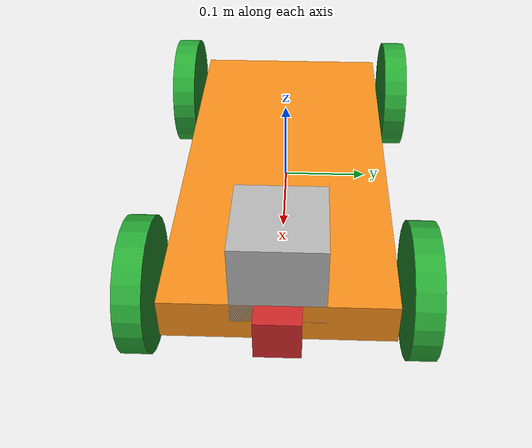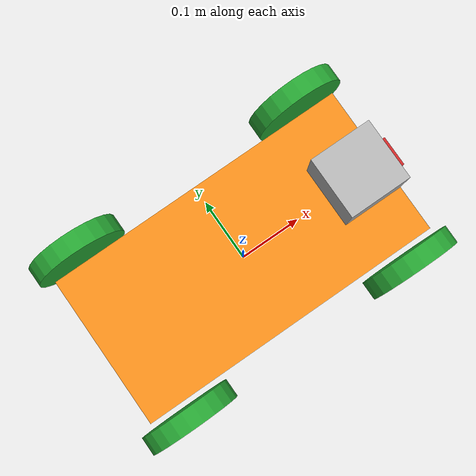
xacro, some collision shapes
<?xml version='1.0'?>

<robot name="robot1" xmlns:xacro="http://www.ros.org/wiki/xacro">
 <xacro:include filename="$(find robot1)/urdf/robot_1.gazebo"/>

  <link name="robot_footprint"></link>

  <joint name="robot_footprint_joint" type="fixed">
    <origin xyz="0 0 0" rpy="0 0 0" />
    <parent link="robot_footprint"/>
    <child link="chassis" />
  </joint>

  <link name='chassis'>
    <pose>0 0 0.1 0 0 0</pose>

    <inertial>
      <mass value="10.0"/>
      <origin xyz="0.0 0 0" rpy=" 0 0 0"/>
      <inertia
          ixx="0.1" ixy="0" ixz="0"
          iyy="0.1" iyz="0"
          izz="0.1"
      />
    </inertial>

    <collision name='collision'>
      <origin xyz="0 0 0" rpy=" 0 0 0"/>
      <geometry>
        <box size=".5 .25 .05"/>
      </geometry>
    </collision>

    <visual name='chassis_visual'>
      <origin xyz="0 0 0" rpy=" 0 0 0"/>
      <geometry>
        <box size=".5 .25 .05"/>
      </geometry>
    </visual>

  </link>

<gazebo reference="chassis">
    <material>Gazebo/Orange</material>
</gazebo>

<!--left front wheel-->
  <link name='left_front_wheel'>
     <visual name ='left_front_wheel_visual'>
	<origin xyz="0 0 0" rpy="0 1.5707 1.5707"/>
	<geometry>
	   <cylinder radius="0.075" length="0.03"/>
	</geometry>
     </visual>

     <inertial>
      	  <mass value="5.0"/>
          <origin xyz="0.0 0 0" rpy="0 1.5707 1.5707"/>
          <inertia
            ixx="0.1" ixy="0" ixz="0"
            iyy="0.1" iyz="0"
            izz="0.1"
          />
     </inertial>

     <collision name='left_front_wheel_collision'>
           <origin xyz="0 0 0" rpy="0 1.5707 1.5707"/>
           <geometry>
             <cylinder radius="0.075" length="0.03"/>
           </geometry>
     </collision>
  </link>

<gazebo reference="left_front_wheel">
    <material>Gazebo/Green</material>
</gazebo>

<!--right front wheel-->
  <link name='right_front_wheel'>
     <visual name ='right_front_wheel_visual'>
	<origin xyz="0 0 0" rpy="0 1.5707 1.5707"/>
	<geometry>
	   <cylinder radius="0.075" length="0.03"/>
	</geometry>
     </visual>

     <inertial>
      	  <mass value="5.0"/>
          <origin xyz="0.0 0 0" rpy=" 0 1.5707 1.5707"/>
          <inertia
            ixx="0.1" ixy="0" ixz="0"
            iyy="0.1" iyz="0"
            izz="0.1"
          />
     </inertial>

     <collision name='right_front_wheel_collision'>
           <origin xyz="0 0 0" rpy=" 0 1.5707 1.5707"/>
           <geometry>
             <cylinder radius="0.075" length="0.03"/>
           </geometry>
     </collision>
  </link>

<gazebo reference="right_front_wheel">
    <material>Gazebo/Green</material>
</gazebo>

<!--left rear wheel-->
  <link name='left_rear_wheel'>
     <visual name ='left_rear_wheel_visual'>
	<origin xyz="0 0 0" rpy="0 1.5707 1.5707"/>
	<geometry>
	   <cylinder radius="0.075" length="0.03"/>
	</geometry>
     </visual>

     <inertial>
      	  <mass value="5.0"/>
          <origin xyz="0.0 0 0" rpy="0 1.5707 1.5707"/>
          <inertia
            ixx="0.1" ixy="0" ixz="0"
            iyy="0.1" iyz="0"
            izz="0.1"
          />
     </inertial>

     <collision name='left_rear_wheel_collision'>
           <origin xyz="0 0 0" rpy="0 1.5707 1.5707"/>
           <geometry>
             <cylinder radius="0.075" length="0.03"/>
           </geometry>
     </collision>
  </link>

<gazebo reference="left_rear_wheel">
    <material>Gazebo/Green</material>
</gazebo>

<!--right back wheel-->
  <link name='right_rear_wheel'>
     <visual name ='right_rear_wheel_visual'>
	<origin xyz="0 0 0" rpy="0 1.5707 1.5707"/>
	<geometry>
	   <cylinder radius="0.075" length="0.03"/>
	</geometry>
     </visual>

     <inertial>
      	  <mass value="5.0"/>
          <origin xyz="0.0 0 0" rpy=" 0 1.5707 1.5707"/>
          <inertia
            ixx="0.1" ixy="0" ixz="0"
            iyy="0.1" iyz="0"
            izz="0.1"
          />
     </inertial>

     <collision name='right_rear_wheel_collision'>
           <origin xyz="0 0 0" rpy=" 0 1.5707 1.5707"/>
           <geometry>
             <cylinder radius="0.075" length="0.03"/>
           </geometry>
     </collision>
  </link>

<gazebo reference="right_rear_wheel">
    <material>Gazebo/Green</material>
</gazebo>

<!--left front wheel joint-->
  <joint type="continuous" name="left_front_wheel_hinge">
    <origin xyz="0.2 0.15 0" rpy="0 0 0"/>
    <child link="left_front_wheel"/>
    <parent link="chassis"/>
    <axis xyz="0 1 0" rpy="0 0 0"/>
    <limit effort="10000" velocity="1000"/>
    <dynamics damping="1.0" friction="1.0"/>
  </joint>

<!--right front wheel joint-->
  <joint type="continuous" name="right_front_wheel_hinge">
    <origin xyz="0.2 -0.15 0" rpy="0 0 0"/>
    <child link="right_front_wheel"/>
    <parent link="chassis"/>
    <axis xyz="0 1 0" rpy="0 0 0"/>
    <limit effort="10000" velocity="1000"/>
    <dynamics damping="1.0" friction="1.0"/>
  </joint>

<!--left rear wheel joint-->
  <joint type="continuous" name="left_rear_wheel_hinge">
    <origin xyz="-0.2 0.15 0" rpy="0 0 0"/>
    <child link="left_rear_wheel"/>
    <parent link="chassis"/>
    <axis xyz="0 1 0" rpy="0 0 0"/>
    <limit effort="10000" velocity="1000"/>
    <dynamics damping="1.0" friction="1.0"/>
  </joint>

<!--right rear wheel joint-->
  <joint type="continuous" name="right_rear_wheel_hinge">
    <origin xyz="-0.2 -0.15 0" rpy="0 0 0"/>
    <child link="right_rear_wheel"/>
    <parent link="chassis"/>
    <axis xyz="0 1 0" rpy="0 0 0"/>
    <limit effort="10000" velocity="1000"/>
    <dynamics damping="1.0" friction="1.0"/>
  </joint>

<!--camera-->
  <link name='camera'>
     <visual name ='camera_visual'>
	<geometry>
	   <box size="0.05 0.05 0.05"/>
	</geometry>
     </visual>

     <inertial>
      	  <mass value="0.1"/>
          <origin xyz="0 0 0" rpy=" 0 0 0"/>
	  <box_inertia m="0.1" x="0.05" y="0.05" z="0.05" />
          <inertia
            ixx="1e-6" ixy="0" ixz="0"
            iyy="1e-6" iyz="0"
            izz="1e-6"
          />
     </inertial>

     <collision name='collision'>
           <origin xyz="0 0 0" rpy=" 0 0 0"/>
           <geometry>
             <box size="0.05 0.05 0.05"/>
           </geometry>
     </collision>
  </link>

<gazebo reference="camera">
    <material>Gazebo/Red</material>
</gazebo>

  <joint type="fixed" name="camera_joint">
    <origin xyz="0.25 0 0" rpy="0 0 0"/>
    <child link="camera"/>
    <parent link="chassis"/>
    <axis xyz="0 1 0" rpy="0 0 0"/>
    <limit effort="10000" velocity="1000"/>
    <dynamics damping="1.0" friction="1.0"/>
  </joint>

<!--lidar-->
  <link name='hokuyo'>
     <visual name ='hokuyo_visual'>
	<geometry>
	   <mesh filename="package://robot1/meshes/hokuyo.dae"/>
	</geometry>
     </visual>

     <inertial>
      	  <mass value="1e-5"/>
          <origin xyz="0 0 0" rpy=" 0 0 0"/>
	  <inertia
            ixx="1e-6" ixy="0" ixz="0"
            iyy="1e-6" iyz="0"
            izz="1e-6"
          />
     </inertial>

     <collision name='collision'>
           <origin xyz="0 0 0" rpy=" 0 0 0"/>
           <geometry>
             <box size="0.1 0.1 0.1"/>
           </geometry>
     </collision>
  </link>

  <joint type="fixed" name="hokuyo_joint">
    <origin xyz="0.2 0 .05" rpy="0 0 0"/>
    <child link="hokuyo"/>
    <parent link="chassis"/>
    <axis xyz="0 1 0" rpy="0 0 0"/>
    <limit effort="10000" velocity="1000"/>
    <dynamics damping="1.0" friction="1.0"/>
  </joint>

</robot>
